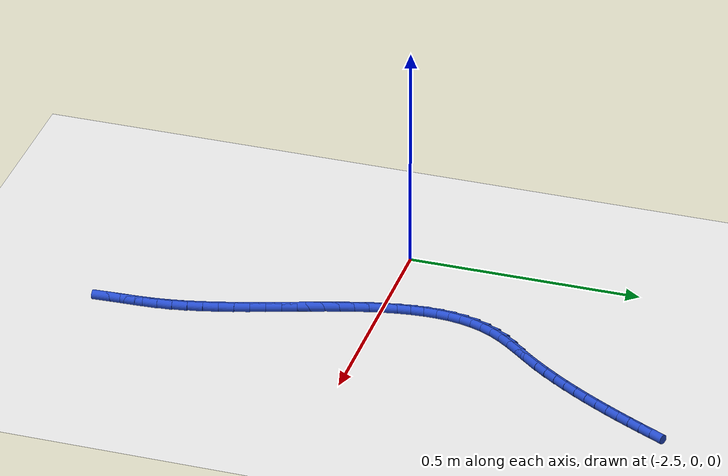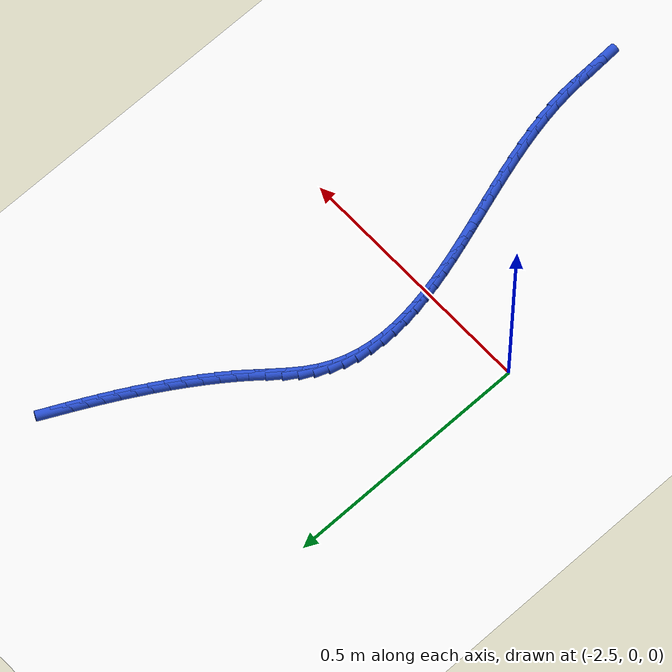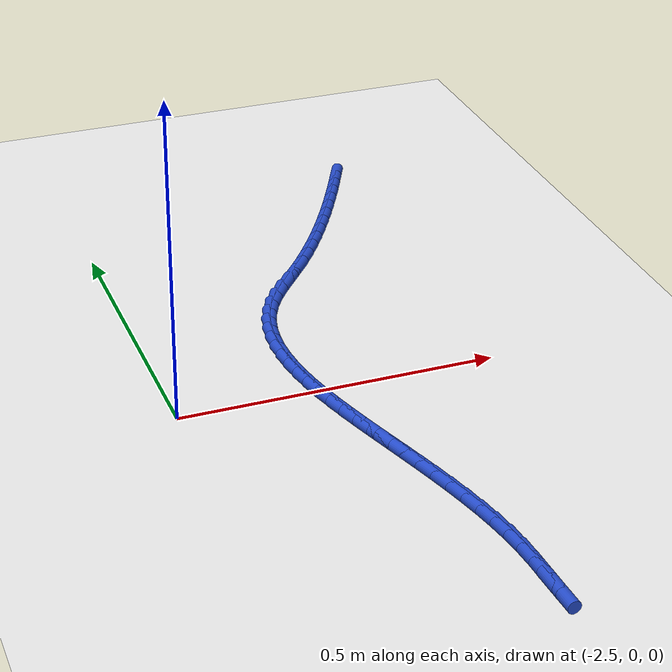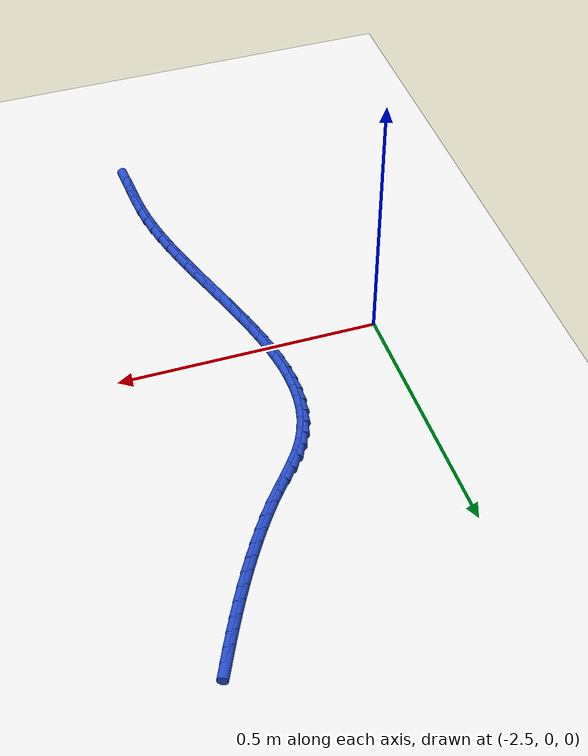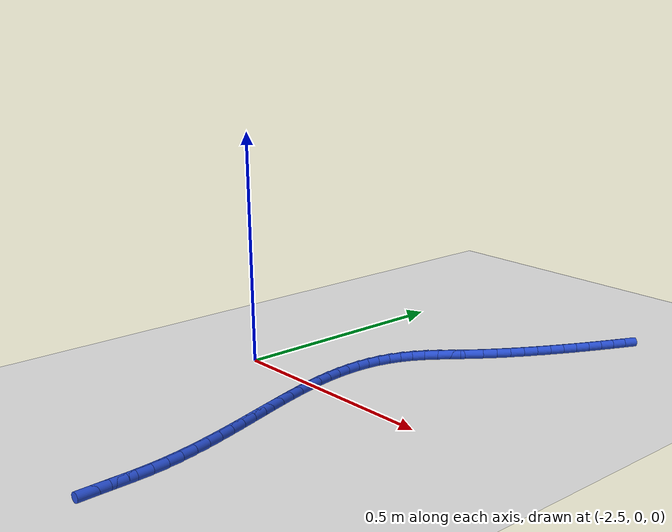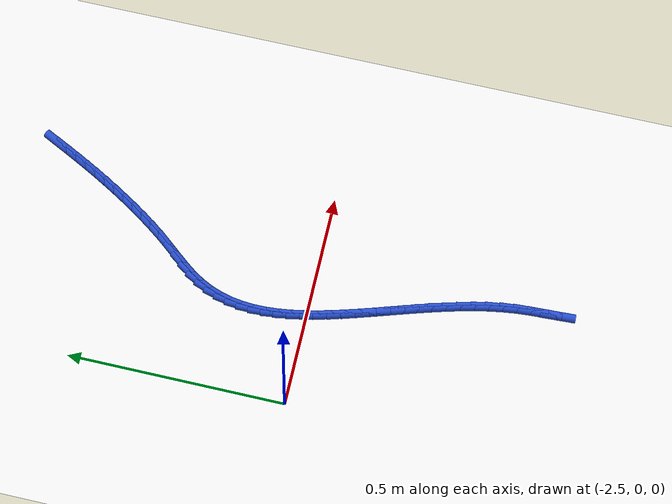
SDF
<sdf version="1.6">
 <world name="default">
  <model name="ground_plane">
   <static>1</static>
   <link name="link">
    <collision name="collision">
     <geometry><plane><normal>0 0 1</normal><size>100 100</size></plane></geometry>
     <surface><friction><ode><mu>100</mu><mu2>50</mu2></ode></friction></surface>
    </collision>
    <visual name="visual">
     <cast_shadows>0</cast_shadows>
     <geometry><plane><normal>0 0 1</normal><size>100 100</size></plane></geometry>
     <material>
      <script><uri>file://media/materials/scripts/gazebo.material</uri><name>Gazebo/WhiteGlow</name></script>
     </material>
    </visual>
   </link>
  </model>
  <model name="line">
   <link name="link_108">
    <pose>-2.0102703870758862 0.6473133863294641 0.01 0 1.57 1.1074256462243868</pose>
    <collision name="collision">
     <geometry><cylinder><radius>0.01</radius><length>0.08</length></cylinder></geometry>
    </collision>
    <visual name="visual">
     <material>
      <script><name>Gazebo/Blue</name><uri>file://media/materials/scripts/gazebo.material</uri></script>
     </material>
     <geometry><cylinder><radius>0.01</radius><length>0.08</length></cylinder></geometry>
    </visual>
   </link>
   <link name="link_109">
    <pose>-2.023128031249392 0.6215802848799973 0.01 0 1.57 1.0981115152780012</pose>
    <collision name="collision">
     <geometry><cylinder><radius>0.01</radius><length>0.08</length></cylinder></geometry>
    </collision>
    <visual name="visual">
     <material>
      <script><name>Gazebo/Blue</name><uri>file://media/materials/scripts/gazebo.material</uri></script>
     </material>
     <geometry><cylinder><radius>0.01</radius><length>0.08</length></cylinder></geometry>
    </visual>
   </link>
   <link name="link_110">
    <pose>-2.036383484858961 0.5956577208188365 0.01 0 1.57 1.087023805958513</pose>
    <collision name="collision">
     <geometry><cylinder><radius>0.01</radius><length>0.08</length></cylinder></geometry>
    </collision>
    <visual name="visual">
     <material>
      <script><name>Gazebo/Blue</name><uri>file://media/materials/scripts/gazebo.material</uri></script>
     </material>
     <geometry><cylinder><radius>0.01</radius><length>0.08</length></cylinder></geometry>
    </visual>
   </link>
   <link name="link_111">
    <pose>-2.050065242890802 0.5696178286950825 0.01 0 1.57 1.074162087070189</pose>
    <collision name="collision">
     <geometry><cylinder><radius>0.01</radius><length>0.08</length></cylinder></geometry>
    </collision>
    <visual name="visual">
     <material>
      <script><name>Gazebo/Blue</name><uri>file://media/materials/scripts/gazebo.material</uri></script>
     </material>
     <geometry><cylinder><radius>0.01</radius><length>0.08</length></cylinder></geometry>
    </visual>
   </link>
   <link name="link_112">
    <pose>-2.0642018003311233 0.5435327430578348 0.01 0 1.57 1.0595110814202366</pose>
    <collision name="collision">
     <geometry><cylinder><radius>0.01</radius><length>0.08</length></cylinder></geometry>
    </collision>
    <visual name="visual">
     <material>
      <script><name>Gazebo/Blue</name><uri>file://media/materials/scripts/gazebo.material</uri></script>
     </material>
     <geometry><cylinder><radius>0.01</radius><length>0.08</length></cylinder></geometry>
    </visual>
   </link>
   <link name="link_113">
    <pose>-2.0788216521661336 0.5174745984561935 0.01 0 1.57 1.0430423834150708</pose>
    <collision name="collision">
     <geometry><cylinder><radius>0.01</radius><length>0.08</length></cylinder></geometry>
    </collision>
    <visual name="visual">
     <material>
      <script><name>Gazebo/Blue</name><uri>file://media/materials/scripts/gazebo.material</uri></script>
     </material>
     <geometry><cylinder><radius>0.01</radius><length>0.08</length></cylinder></geometry>
    </visual>
   </link>
   <link name="link_114">
    <pose>-2.0939532933820404 0.4915155294392583 0.01 0 1.57 1.024716059717139</pose>
    <collision name="collision">
     <geometry><cylinder><radius>0.01</radius><length>0.08</length></cylinder></geometry>
    </collision>
    <visual name="visual">
     <material>
      <script><name>Gazebo/Blue</name><uri>file://media/materials/scripts/gazebo.material</uri></script>
     </material>
     <geometry><cylinder><radius>0.01</radius><length>0.08</length></cylinder></geometry>
    </visual>
   </link>
   <link name="link_115">
    <pose>-2.109625218965053 0.4657276705561287 0.01 0 1.57 1.0044822489748184</pose>
    <collision name="collision">
     <geometry><cylinder><radius>0.01</radius><length>0.08</length></cylinder></geometry>
    </collision>
    <visual name="visual">
     <material>
      <script><name>Gazebo/Blue</name><uri>file://media/materials/scripts/gazebo.material</uri></script>
     </material>
     <geometry><cylinder><radius>0.01</radius><length>0.08</length></cylinder></geometry>
    </visual>
   </link>
   <link name="link_116">
    <pose>-2.1258659239013795 0.4401831563559057 0.01 0 1.57 0.9822828753935521</pose>
    <collision name="collision">
     <geometry><cylinder><radius>0.01</radius><length>0.08</length></cylinder></geometry>
    </collision>
    <visual name="visual">
     <material>
      <script><name>Gazebo/Blue</name><uri>file://media/materials/scripts/gazebo.material</uri></script>
     </material>
     <geometry><cylinder><radius>0.01</radius><length>0.08</length></cylinder></geometry>
    </visual>
   </link>
   <link name="link_117">
    <pose>-2.1427039031772273 0.4149541213876886 0.01 0 1.57 0.9580535929113692</pose>
    <collision name="collision">
     <geometry><cylinder><radius>0.01</radius><length>0.08</length></cylinder></geometry>
    </collision>
    <visual name="visual">
     <material>
      <script><name>Gazebo/Blue</name><uri>file://media/materials/scripts/gazebo.material</uri></script>
     </material>
     <geometry><cylinder><radius>0.01</radius><length>0.08</length></cylinder></geometry>
    </visual>
   </link>
   <link name="link_118">
    <pose>-2.1601676517788064 0.39011270020057714 0.01 0 1.57 0.9317260797171332</pose>
    <collision name="collision">
     <geometry><cylinder><radius>0.01</radius><length>0.08</length></cylinder></geometry>
    </collision>
    <visual name="visual">
     <material>
      <script><name>Gazebo/Blue</name><uri>file://media/materials/scripts/gazebo.material</uri></script>
     </material>
     <geometry><cylinder><radius>0.01</radius><length>0.08</length></cylinder></geometry>
    </visual>
   </link>
   <link name="link_119">
    <pose>-2.178285664692323 0.3657310273436718 0.01 0 1.57 0.9032322468264071</pose>
    <collision name="collision">
     <geometry><cylinder><radius>0.01</radius><length>0.08</length></cylinder></geometry>
    </collision>
    <visual name="visual">
     <material>
      <script><name>Gazebo/Blue</name><uri>file://media/materials/scripts/gazebo.material</uri></script>
     </material>
     <geometry><cylinder><radius>0.01</radius><length>0.08</length></cylinder></geometry>
    </visual>
   </link>
   <link name="link_120">
    <pose>-2.1970863945114947 0.3418812203568227 0.01 0 1.57 0.8799050334721557</pose>
    <collision name="collision">
     <geometry><cylinder><radius>0.01</radius><length>0.08</length></cylinder></geometry>
    </collision>
    <visual name="visual">
     <material>
      <script><name>Gazebo/Blue</name><uri>file://media/materials/scripts/gazebo.material</uri></script>
     </material>
     <geometry><cylinder><radius>0.01</radius><length>0.08</length></cylinder></geometry>
    </visual>
   </link>
   <link name="link_121">
    <pose>-2.216379466479965 0.318547596116283 0.01 0 1.57 0.88647654989412</pose>
    <collision name="collision">
     <geometry><cylinder><radius>0.01</radius><length>0.08</length></cylinder></geometry>
    </collision>
    <visual name="visual">
     <material>
      <script><name>Gazebo/Blue</name><uri>file://media/materials/scripts/gazebo.material</uri></script>
     </material>
     <geometry><cylinder><radius>0.01</radius><length>0.08</length></cylinder></geometry>
    </visual>
   </link>
   <link name="link_122">
    <pose>-2.23524592995882 0.2954221431127147 0.01 0 1.57 0.9299135312000341</pose>
    <collision name="collision">
     <geometry><cylinder><radius>0.01</radius><length>0.08</length></cylinder></geometry>
    </collision>
    <visual name="visual">
     <material>
      <script><name>Gazebo/Blue</name><uri>file://media/materials/scripts/gazebo.material</uri></script>
     </material>
     <geometry><cylinder><radius>0.01</radius><length>0.08</length></cylinder></geometry>
    </visual>
   </link>
   <link name="link_123">
    <pose>-2.252615392907718 0.27213608661162836 0.01 0 1.57 1.0137249986005281</pose>
    <collision name="collision">
     <geometry><cylinder><radius>0.01</radius><length>0.08</length></cylinder></geometry>
    </collision>
    <visual name="visual">
     <material>
      <script><name>Gazebo/Blue</name><uri>file://media/materials/scripts/gazebo.material</uri></script>
     </material>
     <geometry><cylinder><radius>0.01</radius><length>0.08</length></cylinder></geometry>
    </visual>
   </link>
   <link name="link_124">
    <pose>-2.2674441936194016 0.24832914447043375 0.01 0 1.57 1.1201554490043277</pose>
    <collision name="collision">
     <geometry><cylinder><radius>0.01</radius><length>0.08</length></cylinder></geometry>
    </collision>
    <visual name="visual">
     <material>
      <script><name>Gazebo/Blue</name><uri>file://media/materials/scripts/gazebo.material</uri></script>
     </material>
     <geometry><cylinder><radius>0.01</radius><length>0.08</length></cylinder></geometry>
    </visual>
   </link>
   <link name="link_125">
    <pose>-2.2792960596861738 0.2238340104225899 0.01 0 1.57 1.2257779080603755</pose>
    <collision name="collision">
     <geometry><cylinder><radius>0.01</radius><length>0.08</length></cylinder></geometry>
    </collision>
    <visual name="visual">
     <material>
      <script><name>Gazebo/Blue</name><uri>file://media/materials/scripts/gazebo.material</uri></script>
     </material>
     <geometry><cylinder><radius>0.01</radius><length>0.08</length></cylinder></geometry>
    </visual>
   </link>
   <link name="link_126">
    <pose>-2.288338020531497 0.1986750554330702 0.01 0 1.57 1.326640586710191</pose>
    <collision name="collision">
     <geometry><cylinder><radius>0.01</radius><length>0.08</length></cylinder></geometry>
    </collision>
    <visual name="visual">
     <material>
      <script><name>Gazebo/Blue</name><uri>file://media/materials/scripts/gazebo.material</uri></script>
     </material>
     <geometry><cylinder><radius>0.01</radius><length>0.08</length></cylinder></geometry>
    </visual>
   </link>
   <link name="link_127">
    <pose>-2.294763018406556 0.17288488332612797 0.01 0 1.57 1.4203257567851506</pose>
    <collision name="collision">
     <geometry><cylinder><radius>0.01</radius><length>0.08</length></cylinder></geometry>
    </collision>
    <visual name="visual">
     <material>
      <script><name>Gazebo/Blue</name><uri>file://media/materials/scripts/gazebo.material</uri></script>
     </material>
     <geometry><cylinder><radius>0.01</radius><length>0.08</length></cylinder></geometry>
    </visual>
   </link>
   <link name="link_128">
    <pose>-2.298763995562535 0.1464960979260154 0.01 0 1.57 1.5052287111474112</pose>
    <collision name="collision">
     <geometry><cylinder><radius>0.01</radius><length>0.08</length></cylinder></geometry>
    </collision>
    <visual name="visual">
     <material>
      <script><name>Gazebo/Blue</name><uri>file://media/materials/scripts/gazebo.material</uri></script>
     </material>
     <geometry><cylinder><radius>0.01</radius><length>0.08</length></cylinder></geometry>
    </visual>
   </link>
   <link name="link_129">
    <pose>-2.300533894250621 0.11954130305698517 0.01 0 1.57 -1.5610383575615745</pose>
    <collision name="collision">
     <geometry><cylinder><radius>0.01</radius><length>0.08</length></cylinder></geometry>
    </collision>
    <visual name="visual">
     <material>
      <script><name>Gazebo/Blue</name><uri>file://media/materials/scripts/gazebo.material</uri></script>
     </material>
     <geometry><cylinder><radius>0.01</radius><length>0.08</length></cylinder></geometry>
    </visual>
   </link>
   <link name="link_130">
    <pose>-2.3002656567219977 0.09205310254328983 0.01 0 1.57 -1.4954299931454498</pose>
    <collision name="collision">
     <geometry><cylinder><radius>0.01</radius><length>0.08</length></cylinder></geometry>
    </collision>
    <visual name="visual">
     <material>
      <script><name>Gazebo/Blue</name><uri>file://media/materials/scripts/gazebo.material</uri></script>
     </material>
     <geometry><cylinder><radius>0.01</radius><length>0.08</length></cylinder></geometry>
    </visual>
   </link>
   <link name="link_131">
    <pose>-2.2981522252278506 0.06406410020918189 0.01 0 1.57 -1.4392327385454684</pose>
    <collision name="collision">
     <geometry><cylinder><radius>0.01</radius><length>0.08</length></cylinder></geometry>
    </collision>
    <visual name="visual">
     <material>
      <script><name>Gazebo/Blue</name><uri>file://media/materials/scripts/gazebo.material</uri></script>
     </material>
     <geometry><cylinder><radius>0.01</radius><length>0.08</length></cylinder></geometry>
    </visual>
   </link>
   <link name="link_132">
    <pose>-2.294386542019365 0.03560689987891409 0.01 0 1.57 -1.391889209058561</pose>
    <collision name="collision">
     <geometry><cylinder><radius>0.01</radius><length>0.08</length></cylinder></geometry>
    </collision>
    <visual name="visual">
     <material>
      <script><name>Gazebo/Blue</name><uri>file://media/materials/scripts/gazebo.material</uri></script>
     </material>
     <geometry><cylinder><radius>0.01</radius><length>0.08</length></cylinder></geometry>
    </visual>
   </link>
   <link name="link_133">
    <pose>-2.289161549347726 0.006714105376738066 0.01 0 1.57 -1.3527394681034712</pose>
    <collision name="collision">
     <geometry><cylinder><radius>0.01</radius><length>0.08</length></cylinder></geometry>
    </collision>
    <visual name="visual">
     <material>
      <script><name>Gazebo/Blue</name><uri>file://media/materials/scripts/gazebo.material</uri></script>
     </material>
     <geometry><cylinder><radius>0.01</radius><length>0.08</length></cylinder></geometry>
    </visual>
   </link>
   <link name="link_134">
    <pose>-2.2826701894641177 -0.02258167947309188 0.01 0 1.57 -1.321120158076414</pose>
    <collision name="collision">
     <geometry><cylinder><radius>0.01</radius><length>0.08</length></cylinder></geometry>
    </collision>
    <visual name="visual">
     <material>
      <script><name>Gazebo/Blue</name><uri>file://media/materials/scripts/gazebo.material</uri></script>
     </material>
     <geometry><cylinder><radius>0.01</radius><length>0.08</length></cylinder></geometry>
    </visual>
   </link>
   <link name="link_135">
    <pose>-2.275105404619727 -0.05224785084632396 0.01 0 1.57 -1.2964233278543111</pose>
    <collision name="collision">
     <geometry><cylinder><radius>0.01</radius><length>0.08</length></cylinder></geometry>
    </collision>
    <visual name="visual">
     <material>
      <script><name>Gazebo/Blue</name><uri>file://media/materials/scripts/gazebo.material</uri></script>
     </material>
     <geometry><cylinder><radius>0.01</radius><length>0.08</length></cylinder></geometry>
    </visual>
   </link>
   <link name="link_136">
    <pose>-2.266660137065738 -0.08225180491870565 0.01 0 1.57 -1.2781271465119635</pose>
    <collision name="collision">
     <geometry><cylinder><radius>0.01</radius><length>0.08</length></cylinder></geometry>
    </collision>
    <visual name="visual">
     <material>
      <script><name>Gazebo/Blue</name><uri>file://media/materials/scripts/gazebo.material</uri></script>
     </material>
     <geometry><cylinder><radius>0.01</radius><length>0.08</length></cylinder></geometry>
    </visual>
   </link>
   <link name="link_137">
    <pose>-2.2575273290533353 -0.11256093786598431 0.01 0 1.57 -1.2658089935964258</pose>
    <collision name="collision">
     <geometry><cylinder><radius>0.01</radius><length>0.08</length></cylinder></geometry>
    </collision>
    <visual name="visual">
     <material>
      <script><name>Gazebo/Blue</name><uri>file://media/materials/scripts/gazebo.material</uri></script>
     </material>
     <geometry><cylinder><radius>0.01</radius><length>0.08</length></cylinder></geometry>
    </visual>
   </link>
   <link name="link_138">
    <pose>-2.2478999228337053 -0.14314264586390735 0.01 0 1.57 -1.2591484785456941</pose>
    <collision name="collision">
     <geometry><cylinder><radius>0.01</radius><length>0.08</length></cylinder></geometry>
    </collision>
    <visual name="visual">
     <material>
      <script><name>Gazebo/Blue</name><uri>file://media/materials/scripts/gazebo.material</uri></script>
     </material>
     <geometry><cylinder><radius>0.01</radius><length>0.08</length></cylinder></geometry>
    </visual>
   </link>
   <link name="link_139">
    <pose>-2.2379708606580317 -0.17396432508822218 0.01 0 1.57 -1.2579252455241599</pose>
    <collision name="collision">
     <geometry><cylinder><radius>0.01</radius><length>0.08</length></cylinder></geometry>
    </collision>
    <visual name="visual">
     <material>
      <script><name>Gazebo/Blue</name><uri>file://media/materials/scripts/gazebo.material</uri></script>
     </material>
     <geometry><cylinder><radius>0.01</radius><length>0.08</length></cylinder></geometry>
    </visual>
   </link>
   <link name="link_140">
    <pose>-2.2279330847775007 -0.2049933717146772 0.01 0 1.57 -1.2620143736322833</pose>
    <collision name="collision">
     <geometry><cylinder><radius>0.01</radius><length>0.08</length></cylinder></geometry>
    </collision>
    <visual name="visual">
     <material>
      <script><name>Gazebo/Blue</name><uri>file://media/materials/scripts/gazebo.material</uri></script>
     </material>
     <geometry><cylinder><radius>0.01</radius><length>0.08</length></cylinder></geometry>
    </visual>
   </link>
   <link name="link_141">
    <pose>-2.217979537443297 -0.2361971819190179 0.01 0 1.57 -1.2713807386094351</pose>
    <collision name="collision">
     <geometry><cylinder><radius>0.01</radius><length>0.08</length></cylinder></geometry>
    </collision>
    <visual name="visual">
     <material>
      <script><name>Gazebo/Blue</name><uri>file://media/materials/scripts/gazebo.material</uri></script>
     </material>
     <geometry><cylinder><radius>0.01</radius><length>0.08</length></cylinder></geometry>
    </visual>
   </link>
   <link name="link_142">
    <pose>-2.2083031609066053 -0.2675431518769926 0.01 0 1.57 -1.2860726787080825</pose>
    <collision name="collision">
     <geometry><cylinder><radius>0.01</radius><length>0.08</length></cylinder></geometry>
    </collision>
    <visual name="visual">
     <material>
      <script><name>Gazebo/Blue</name><uri>file://media/materials/scripts/gazebo.material</uri></script>
     </material>
     <geometry><cylinder><radius>0.01</radius><length>0.08</length></cylinder></geometry>
    </visual>
   </link>
   <link name="link_143">
    <pose>-2.1990968974186114 -0.29899867776434885 0.01 0 1.57 -1.3062145198966748</pose>
    <collision name="collision">
     <geometry><cylinder><radius>0.01</radius><length>0.08</length></cylinder></geometry>
    </collision>
    <visual name="visual">
     <material>
      <script><name>Gazebo/Blue</name><uri>file://media/materials/scripts/gazebo.material</uri></script>
     </material>
     <geometry><cylinder><radius>0.01</radius><length>0.08</length></cylinder></geometry>
    </visual>
   </link>
   <link name="link_144">
    <pose>-2.1905536892305 -0.3305311557568339 0.01 0 1.57 -1.3319968209464024</pose>
    <collision name="collision">
     <geometry><cylinder><radius>0.01</radius><length>0.08</length></cylinder></geometry>
    </collision>
    <visual name="visual">
     <material>
      <script><name>Gazebo/Blue</name><uri>file://media/materials/scripts/gazebo.material</uri></script>
     </material>
     <geometry><cylinder><radius>0.01</radius><length>0.08</length></cylinder></geometry>
    </visual>
   </link>
   <link name="link_145">
    <pose>-2.182866478593456 -0.3621079820301952 0.01 0 1.57 -1.3636625130427884</pose>
    <collision name="collision">
     <geometry><cylinder><radius>0.01</radius><length>0.08</length></cylinder></geometry>
    </collision>
    <visual name="visual">
     <material>
      <script><name>Gazebo/Blue</name><uri>file://media/materials/scripts/gazebo.material</uri></script>
     </material>
     <geometry><cylinder><radius>0.01</radius><length>0.08</length></cylinder></geometry>
    </visual>
   </link>
   <link name="link_146">
    <pose>-2.1762282077586654 -0.3936965527601801 0.01 0 1.57 -1.40148642971525</pose>
    <collision name="collision">
     <geometry><cylinder><radius>0.01</radius><length>0.08</length></cylinder></geometry>
    </collision>
    <visual name="visual">
     <material>
      <script><name>Gazebo/Blue</name><uri>file://media/materials/scripts/gazebo.material</uri></script>
     </material>
     <geometry><cylinder><radius>0.01</radius><length>0.08</length></cylinder></geometry>
    </visual>
   </link>
   <link name="link_147">
    <pose>-2.170831818977312 -0.42526426412253604 0.01 0 1.57 -1.4457451798248664</pose>
    <collision name="collision">
     <geometry><cylinder><radius>0.01</radius><length>0.08</length></cylinder></geometry>
    </collision>
    <visual name="visual">
     <material>
      <script><name>Gazebo/Blue</name><uri>file://media/materials/scripts/gazebo.material</uri></script>
     </material>
     <geometry><cylinder><radius>0.01</radius><length>0.08</length></cylinder></geometry>
    </visual>
   </link>
   <link name="link_148">
    <pose>-2.1668702545005827 -0.45677851229301075 0.01 0 1.57 -1.492368384682151</pose>
    <collision name="collision">
     <geometry><cylinder><radius>0.01</radius><length>0.08</length></cylinder></geometry>
    </collision>
    <visual name="visual">
     <material>
      <script><name>Gazebo/Blue</name><uri>file://media/materials/scripts/gazebo.material</uri></script>
     </material>
     <geometry><cylinder><radius>0.01</radius><length>0.08</length></cylinder></geometry>
    </visual>
   </link>
   <link name="link_149">
    <pose>-2.164401752600457 -0.4881887285124534 0.01 0 1.57 -1.5233697814677694</pose>
    <collision name="collision">
     <geometry><cylinder><radius>0.01</radius><length>0.08</length></cylinder></geometry>
    </collision>
    <visual name="visual">
     <material>
      <script><name>Gazebo/Blue</name><uri>file://media/materials/scripts/gazebo.material</uri></script>
     </material>
     <geometry><cylinder><radius>0.01</radius><length>0.08</length></cylinder></geometry>
    </visual>
   </link>
   <link name="link_150">
    <pose>-2.1629218561019203 -0.5193692995639843 0.01 0 1.57 -1.533721049391378</pose>
    <collision name="collision">
     <geometry><cylinder><radius>0.01</radius><length>0.08</length></cylinder></geometry>
    </collision>
    <visual name="visual">
     <material>
      <script><name>Gazebo/Blue</name><uri>file://media/materials/scripts/gazebo.material</uri></script>
     </material>
     <geometry><cylinder><radius>0.01</radius><length>0.08</length></cylinder></geometry>
    </visual>
   </link>
   <link name="link_151">
    <pose>-2.161779201869314 -0.5501750199660068 0.01 0 1.57 -1.5227322146864852</pose>
    <collision name="collision">
     <geometry><cylinder><radius>0.01</radius><length>0.08</length></cylinder></geometry>
    </collision>
    <visual name="visual">
     <material>
      <script><name>Gazebo/Blue</name><uri>file://media/materials/scripts/gazebo.material</uri></script>
     </material>
     <geometry><cylinder><radius>0.01</radius><length>0.08</length></cylinder></geometry>
    </visual>
   </link>
  </model>
 </world>
</sdf>
